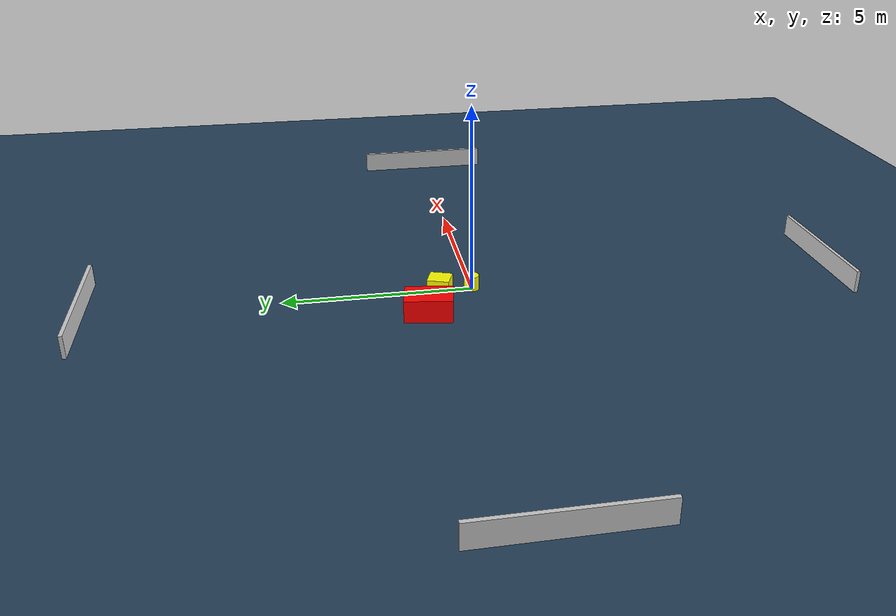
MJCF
<?xml version="1.0" ?>
<mujoco model="generated_environment">
  <option timestep="0.01" integrator="RK4" cone="elliptic"/>
  <default>
    <geom density="1"/>
  </default>
  <asset>
    <texture builtin="gradient" height="3072" name="skybox" rgb1="0.3 0.5 0.7" rgb2="0 0 0" type="skybox" width="512"/>
    <texture builtin="checker" height="300" name="groundplane" rgb1="0.2 0.3 0.4" rgb2="0.1 0.2 0.3" type="2d" width="300"/>
    <material name="groundplane" reflectance="0.2" texrepeat="5 5" texture="groundplane"/>
  </asset>
  <worldbody>
    <light dir="0 0 -1" directional="true" pos="0 0 1.5"/>
    <geom condim="3" friction="0.5 0.005 0.001" material="groundplane" name="floor" pos="0 0 0" size="0 0 0.05" type="plane"/>
    <body name="walls">
      <geom name="wall_1" condim="4" pos="-10.0 0.0 0.3" rgba="0.800000011920929 0.800000011920929 0.800000011920929 1.0" size="0.05 2.0 0.3" type="box"/>
      <geom name="wall_2" condim="4" pos="10.0 0.0 0.3" rgba="0.800000011920929 0.800000011920929 0.800000011920929 1.0" size="0.05 2.0 0.3" type="box"/>
      <geom name="wall_3" condim="4" pos="0.0 -10.0 0.3" rgba="0.800000011920929 0.800000011920929 0.800000011920929 1.0" size="2.0 0.05 0.3" type="box"/>
      <geom name="wall_4" condim="4" pos="0.0 10.0 0.3" rgba="0.800000011920929 0.800000011920929 0.800000011920929 1.0" size="2.0 0.05 0.3" type="box"/>
    </body>
    <body name="robot">
      <joint name="joint_x" type="slide" pos="0 0 0" axis="1 0 0"/>
      <joint name="joint_y" type="slide" pos="0 0 0" axis="0 1 0"/>
      <geom name="robot" type="cylinder" pos="0.0 0.0 0.2" size="0.2 0.2 0.0" mass="5.0" friction="1.0 0.005 0.0001" condim="4" rgba="1.0 1.0 0.0 1.0"/>
    </body>
    <body name="obstacle_1_movable">
      <geom name="obstacle_1_movable" condim="4" pos="-0.38731823659948733 0.9093493999810837 0.3" euler="0 0 70.15824738592214" friction="0.0 0.005 0.001" rgba="1.0 1.0 0.0 1.0" size="0.2912737753368707 0.27131743998342484 0.3" type="box" mass="0.1"/>
      <joint type="free"/>
    </body>
    <body name="obstacle_2_static">
      <geom name="obstacle_2_static" condim="4" pos="-1.30453341500197 1.3262723664126204 0.3" euler="0 0 261.3585091491183" friction="0.0 0.005 0.001" rgba="1.0 0.0 0.0 1.0" size="0.6193116690250522 0.43352544477644867 0.3" type="box"/>
    </body>
  </worldbody>
  <actuator>
    <motor name="actuator_x" joint="joint_x" gear="1" ctrlrange="-1 1"/>
    <motor name="actuator_y" joint="joint_y" gear="1" ctrlrange="-1 1"/>
  </actuator>
</mujoco>
